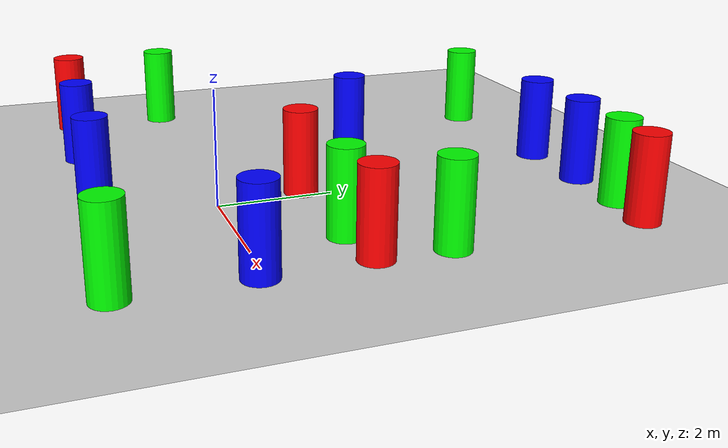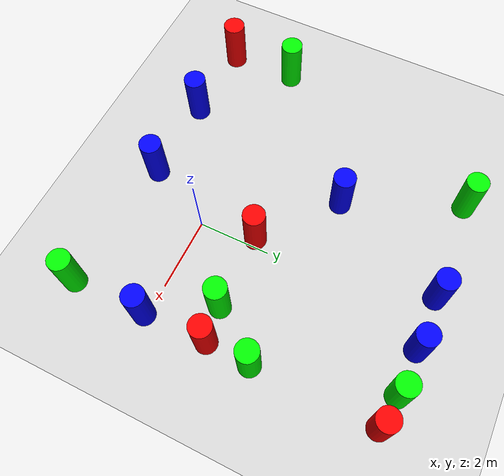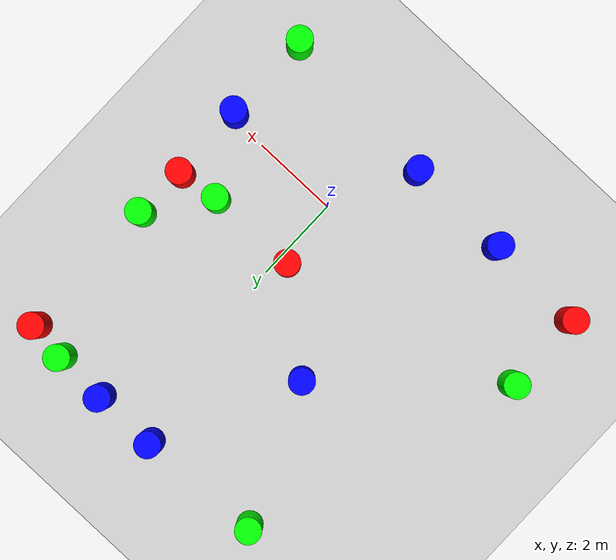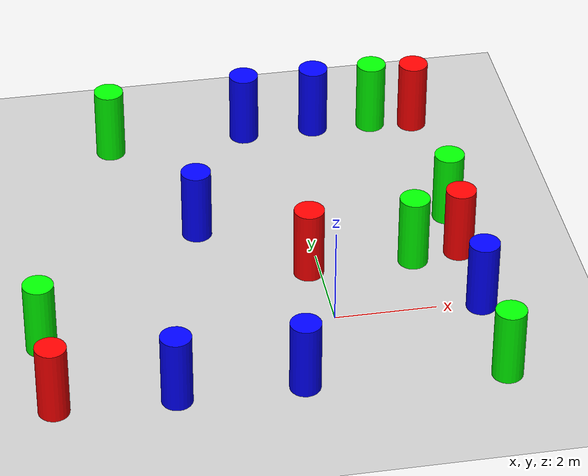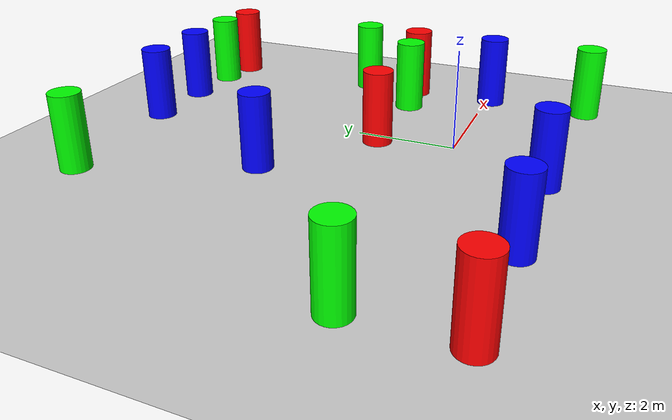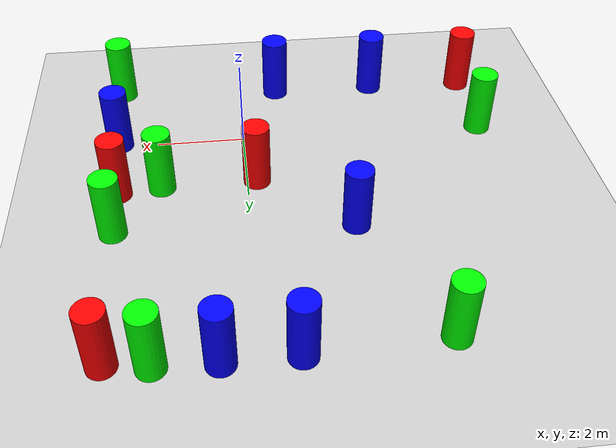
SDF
<sdf version="1.6">
 <world name="default">
  <model name="ground_plane">
   <static>1</static>
   <link name="link">
    <collision name="collision">
     <geometry><plane><normal>0 0 1</normal><size>100 100</size></plane></geometry>
     <surface>
      <contact><collide_bitmask>65535</collide_bitmask></contact>
      <friction><ode><mu>100</mu><mu2>50</mu2></ode></friction>
     </surface>
    </collision>
    <visual name="visual">
     <cast_shadows>0</cast_shadows>
     <geometry><plane><normal>0 0 1</normal><size>100 100</size></plane></geometry>
     <material>
      <script><uri>file://media/materials/scripts/gazebo.material</uri><name>Gazebo/Grey</name></script>
     </material>
    </visual>
   </link>
  </model>
  <model name="class01_clone_0">
   <link name="link">
    <pose>-0.202221 0.506091 0 0 -0 0</pose>
    <inertial>
     <mass>1</mass>
     <inertia><ixx>0.145833</ixx><ixy>0</ixy><ixz>0</ixz><iyy>0.145833</iyy><iyz>0</iyz><izz>0.125</izz></inertia>
    </inertial>
    <visual name="visual">
     <geometry><cylinder><radius>0.3</radius><length>2</length></cylinder></geometry>
     <material>
      <script><name>Gazebo/Grey</name><uri>file://media/materials/scripts/gazebo.material</uri></script>
      <ambient>1 0 0 1</ambient>
      <diffuse>0.7 0.7 0.7 1</diffuse>
      <specular>0.01 0.01 0.01 1</specular>
      <emissive>0 0 0 1</emissive>
      <shader type="vertex"><normal_map>__default__</normal_map></shader>
     </material>
    </visual>
    <collision name="collision">
     <geometry><cylinder><radius>0.5</radius><length>1</length></cylinder></geometry>
     <surface>
      <friction>
       <ode><mu>1</mu><mu2>1</mu2><fdir1>0 0 0</fdir1><slip1>0</slip1><slip2>0</slip2></ode>
       <torsional>
        <coefficient>1</coefficient>
        <patch_radius>0</patch_radius>
        <surface_radius>0</surface_radius>
        <use_patch_radius>1</use_patch_radius>
        <ode><slip>0</slip></ode>
       </torsional>
      </friction>
      <bounce><restitution_coefficient>0</restitution_coefficient><threshold>1e+06</threshold></bounce>
      <contact>
       <collide_without_contact>0</collide_without_contact>
       <collide_without_contact_bitmask>1</collide_without_contact_bitmask>
       <collide_bitmask>1</collide_bitmask>
       <ode>
        <soft_cfm>0</soft_cfm>
        <soft_erp>0.2</soft_erp>
        <kp>1e+13</kp>
        <kd>1</kd>
        <max_vel>0.01</max_vel>
        <min_depth>0</min_depth>
       </ode>
       <bullet>
        <split_impulse>1</split_impulse>
        <split_impulse_penetration_threshold>-0.01</split_impulse_penetration_threshold>
        <soft_cfm>0</soft_cfm>
        <soft_erp>0.2</soft_erp>
        <kp>1e+13</kp>
        <kd>1</kd>
       </bullet>
      </contact>
     </surface>
    </collision>
   </link>
   <static>0</static>
   <pose>-5.40307 -2.30982 0.499994 -3e-06 -1e-06 -0</pose>
  </model>
  <model name="class01_clone_4">
   <link name="link">
    <pose>-0.202221 0.506091 0 0 -0 0</pose>
    <inertial>
     <mass>1</mass>
     <inertia><ixx>0.145833</ixx><ixy>0</ixy><ixz>0</ixz><iyy>0.145833</iyy><iyz>0</iyz><izz>0.125</izz></inertia>
    </inertial>
    <visual name="visual">
     <geometry><cylinder><radius>0.3</radius><length>2</length></cylinder></geometry>
     <material>
      <script><name>Gazebo/Grey</name><uri>file://media/materials/scripts/gazebo.material</uri></script>
      <ambient>1 0 0 1</ambient>
      <diffuse>0.7 0.7 0.7 1</diffuse>
      <specular>0.01 0.01 0.01 1</specular>
      <emissive>0 0 0 1</emissive>
      <shader type="vertex"><normal_map>__default__</normal_map></shader>
     </material>
    </visual>
    <collision name="collision">
     <geometry><cylinder><radius>0.5</radius><length>1</length></cylinder></geometry>
     <surface>
      <friction>
       <ode><mu>1</mu><mu2>1</mu2><fdir1>0 0 0</fdir1><slip1>0</slip1><slip2>0</slip2></ode>
       <torsional>
        <coefficient>1</coefficient>
        <patch_radius>0</patch_radius>
        <surface_radius>0</surface_radius>
        <use_patch_radius>1</use_patch_radius>
        <ode><slip>0</slip></ode>
       </torsional>
      </friction>
      <bounce><restitution_coefficient>0</restitution_coefficient><threshold>1e+06</threshold></bounce>
      <contact>
       <collide_without_contact>0</collide_without_contact>
       <collide_without_contact_bitmask>1</collide_without_contact_bitmask>
       <collide_bitmask>1</collide_bitmask>
       <ode>
        <soft_cfm>0</soft_cfm>
        <soft_erp>0.2</soft_erp>
        <kp>1e+13</kp>
        <kd>1</kd>
        <max_vel>0.01</max_vel>
        <min_depth>0</min_depth>
       </ode>
       <bullet>
        <split_impulse>1</split_impulse>
        <split_impulse_penetration_threshold>-0.01</split_impulse_penetration_threshold>
        <soft_cfm>0</soft_cfm>
        <soft_erp>0.2</soft_erp>
        <kp>1e+13</kp>
        <kd>1</kd>
       </bullet>
      </contact>
     </surface>
    </collision>
   </link>
   <static>0</static>
   <pose>3.07826 5.78008 0.499995 -3e-06 -4e-06 -0</pose>
  </model>
  <model name="class01_clone_7">
   <link name="link">
    <pose>-0.202221 0.506091 0 0 -0 0</pose>
    <inertial>
     <mass>1</mass>
     <inertia><ixx>0.145833</ixx><ixy>0</ixy><ixz>0</ixz><iyy>0.145833</iyy><iyz>0</iyz><izz>0.125</izz></inertia>
    </inertial>
    <visual name="visual">
     <geometry><cylinder><radius>0.3</radius><length>2</length></cylinder></geometry>
     <material>
      <script><name>Gazebo/Grey</name><uri>file://media/materials/scripts/gazebo.material</uri></script>
      <ambient>1 0 0 1</ambient>
      <diffuse>0.7 0.7 0.7 1</diffuse>
      <specular>0.01 0.01 0.01 1</specular>
      <emissive>0 0 0 1</emissive>
      <shader type="vertex"><normal_map>__default__</normal_map></shader>
     </material>
    </visual>
    <collision name="collision">
     <geometry><cylinder><radius>0.5</radius><length>1</length></cylinder></geometry>
     <surface>
      <friction>
       <ode><mu>1</mu><mu2>1</mu2><fdir1>0 0 0</fdir1><slip1>0</slip1><slip2>0</slip2></ode>
       <torsional>
        <coefficient>1</coefficient>
        <patch_radius>0</patch_radius>
        <surface_radius>0</surface_radius>
        <use_patch_radius>1</use_patch_radius>
        <ode><slip>0</slip></ode>
       </torsional>
      </friction>
      <bounce><restitution_coefficient>0</restitution_coefficient><threshold>1e+06</threshold></bounce>
      <contact>
       <collide_without_contact>0</collide_without_contact>
       <collide_without_contact_bitmask>1</collide_without_contact_bitmask>
       <collide_bitmask>1</collide_bitmask>
       <ode>
        <soft_cfm>0</soft_cfm>
        <soft_erp>0.2</soft_erp>
        <kp>1e+13</kp>
        <kd>1</kd>
        <max_vel>0.01</max_vel>
        <min_depth>0</min_depth>
       </ode>
       <bullet>
        <split_impulse>1</split_impulse>
        <split_impulse_penetration_threshold>-0.01</split_impulse_penetration_threshold>
        <soft_cfm>0</soft_cfm>
        <soft_erp>0.2</soft_erp>
        <kp>1e+13</kp>
        <kd>1</kd>
       </bullet>
      </contact>
     </surface>
    </collision>
   </link>
   <static>0</static>
   <pose>-0.021381 1.02694 0.499996 3e-06 1e-06 -0</pose>
  </model>
  <model name="class01_clone_8">
   <link name="link">
    <pose>-0.202221 0.506091 0 0 -0 0</pose>
    <inertial>
     <mass>1</mass>
     <inertia><ixx>0.145833</ixx><ixy>0</ixy><ixz>0</ixz><iyy>0.145833</iyy><iyz>0</iyz><izz>0.125</izz></inertia>
    </inertial>
    <visual name="visual">
     <geometry><cylinder><radius>0.3</radius><length>2</length></cylinder></geometry>
     <material>
      <script><name>Gazebo/Grey</name><uri>file://media/materials/scripts/gazebo.material</uri></script>
      <ambient>1 0 0 1</ambient>
      <diffuse>0.7 0.7 0.7 1</diffuse>
      <specular>0.01 0.01 0.01 1</specular>
      <emissive>0 0 0 1</emissive>
      <shader type="vertex"><normal_map>__default__</normal_map></shader>
     </material>
    </visual>
    <collision name="collision">
     <geometry><cylinder><radius>0.5</radius><length>1</length></cylinder></geometry>
     <surface>
      <friction>
       <ode><mu>1</mu><mu2>1</mu2><fdir1>0 0 0</fdir1><slip1>0</slip1><slip2>0</slip2></ode>
       <torsional>
        <coefficient>1</coefficient>
        <patch_radius>0</patch_radius>
        <surface_radius>0</surface_radius>
        <use_patch_radius>1</use_patch_radius>
        <ode><slip>0</slip></ode>
       </torsional>
      </friction>
      <bounce><restitution_coefficient>0</restitution_coefficient><threshold>1e+06</threshold></bounce>
      <contact>
       <collide_without_contact>0</collide_without_contact>
       <collide_without_contact_bitmask>1</collide_without_contact_bitmask>
       <collide_bitmask>1</collide_bitmask>
       <ode>
        <soft_cfm>0</soft_cfm>
        <soft_erp>0.2</soft_erp>
        <kp>1e+13</kp>
        <kd>1</kd>
        <max_vel>0.01</max_vel>
        <min_depth>0</min_depth>
       </ode>
       <bullet>
        <split_impulse>1</split_impulse>
        <split_impulse_penetration_threshold>-0.01</split_impulse_penetration_threshold>
        <soft_cfm>0</soft_cfm>
        <soft_erp>0.2</soft_erp>
        <kp>1e+13</kp>
        <kd>1</kd>
       </bullet>
      </contact>
     </surface>
    </collision>
   </link>
   <static>0</static>
   <pose>3.0328 1.17628 0.499996 3e-06 1e-06 -0</pose>
  </model>
  <model name="class02_clone_0">
   <link name="link">
    <inertial>
     <mass>1</mass>
     <inertia><ixx>0.145833</ixx><ixy>0</ixy><ixz>0</ixz><iyy>0.145833</iyy><iyz>0</iyz><izz>0.125</izz></inertia>
    </inertial>
    <visual name="visual">
     <geometry><cylinder><radius>0.3</radius><length>2</length></cylinder></geometry>
     <material>
      <script><name>Gazebo/Grey</name><uri>file://media/materials/scripts/gazebo.material</uri></script>
      <ambient>0 1 0 1</ambient>
      <diffuse>0.7 0.7 0.7 1</diffuse>
      <specular>0.01 0.01 0.01 1</specular>
      <emissive>0 0 0 1</emissive>
      <shader type="vertex"><normal_map>__default__</normal_map></shader>
     </material>
    </visual>
    <collision name="collision">
     <geometry><cylinder><radius>0.5</radius><length>1</length></cylinder></geometry>
     <surface>
      <friction>
       <ode><mu>1</mu><mu2>1</mu2><fdir1>0 0 0</fdir1><slip1>0</slip1><slip2>0</slip2></ode>
       <torsional>
        <coefficient>1</coefficient>
        <patch_radius>0</patch_radius>
        <surface_radius>0</surface_radius>
        <use_patch_radius>1</use_patch_radius>
        <ode><slip>0</slip></ode>
       </torsional>
      </friction>
      <bounce><restitution_coefficient>0</restitution_coefficient><threshold>1e+06</threshold></bounce>
      <contact>
       <collide_without_contact>0</collide_without_contact>
       <collide_without_contact_bitmask>1</collide_without_contact_bitmask>
       <collide_bitmask>1</collide_bitmask>
       <ode>
        <soft_cfm>0</soft_cfm>
        <soft_erp>0.2</soft_erp>
        <kp>1e+13</kp>
        <kd>1</kd>
        <max_vel>0.01</max_vel>
        <min_depth>0</min_depth>
       </ode>
       <bullet>
        <split_impulse>1</split_impulse>
        <split_impulse_penetration_threshold>-0.01</split_impulse_penetration_threshold>
        <soft_cfm>0</soft_cfm>
        <soft_erp>0.2</soft_erp>
        <kp>1e+13</kp>
        <kd>1</kd>
       </bullet>
      </contact>
     </surface>
    </collision>
   </link>
   <static>0</static>
   <pose>-5.64027 0.07795 0.499998 3e-06 2e-06 0</pose>
  </model>
  <model name="class02_clone_2">
   <link name="link">
    <inertial>
     <mass>1</mass>
     <inertia><ixx>0.145833</ixx><ixy>0</ixy><ixz>0</ixz><iyy>0.145833</iyy><iyz>0</iyz><izz>0.125</izz></inertia>
    </inertial>
    <visual name="visual">
     <geometry><cylinder><radius>0.3</radius><length>2</length></cylinder></geometry>
     <material>
      <script><name>Gazebo/Grey</name><uri>file://media/materials/scripts/gazebo.material</uri></script>
      <ambient>0 1 0 1</ambient>
      <diffuse>0.7 0.7 0.7 1</diffuse>
      <specular>0.01 0.01 0.01 1</specular>
      <emissive>0 0 0 1</emissive>
      <shader type="vertex"><normal_map>__default__</normal_map></shader>
     </material>
    </visual>
    <collision name="collision">
     <geometry><cylinder><radius>0.5</radius><length>1</length></cylinder></geometry>
     <surface>
      <friction>
       <ode><mu>1</mu><mu2>1</mu2><fdir1>0 0 0</fdir1><slip1>0</slip1><slip2>0</slip2></ode>
       <torsional>
        <coefficient>1</coefficient>
        <patch_radius>0</patch_radius>
        <surface_radius>0</surface_radius>
        <use_patch_radius>1</use_patch_radius>
        <ode><slip>0</slip></ode>
       </torsional>
      </friction>
      <bounce><restitution_coefficient>0</restitution_coefficient><threshold>1e+06</threshold></bounce>
      <contact>
       <collide_without_contact>0</collide_without_contact>
       <collide_without_contact_bitmask>1</collide_without_contact_bitmask>
       <collide_bitmask>1</collide_bitmask>
       <ode>
        <soft_cfm>0</soft_cfm>
        <soft_erp>0.2</soft_erp>
        <kp>1e+13</kp>
        <kd>1</kd>
        <max_vel>0.01</max_vel>
        <min_depth>0</min_depth>
       </ode>
       <bullet>
        <split_impulse>1</split_impulse>
        <split_impulse_penetration_threshold>-0.01</split_impulse_penetration_threshold>
        <soft_cfm>0</soft_cfm>
        <soft_erp>0.2</soft_erp>
        <kp>1e+13</kp>
        <kd>1</kd>
       </bullet>
      </contact>
     </surface>
    </collision>
   </link>
   <static>0</static>
   <pose>1.87775 1.56113 0.499992 -3e-06 -2e-06 0</pose>
  </model>
  <model name="class02_clone_3">
   <link name="link">
    <inertial>
     <mass>1</mass>
     <inertia><ixx>0.145833</ixx><ixy>0</ixy><ixz>0</ixz><iyy>0.145833</iyy><iyz>0</iyz><izz>0.125</izz></inertia>
    </inertial>
    <visual name="visual">
     <geometry><cylinder><radius>0.3</radius><length>2</length></cylinder></geometry>
     <material>
      <script><name>Gazebo/Grey</name><uri>file://media/materials/scripts/gazebo.material</uri></script>
      <ambient>0 1 0 1</ambient>
      <diffuse>0.7 0.7 0.7 1</diffuse>
      <specular>0.01 0.01 0.01 1</specular>
      <emissive>0 0 0 1</emissive>
      <shader type="vertex"><normal_map>__default__</normal_map></shader>
     </material>
    </visual>
    <collision name="collision">
     <geometry><cylinder><radius>0.5</radius><length>1</length></cylinder></geometry>
     <surface>
      <friction>
       <ode><mu>1</mu><mu2>1</mu2><fdir1>0 0 0</fdir1><slip1>0</slip1><slip2>0</slip2></ode>
       <torsional>
        <coefficient>1</coefficient>
        <patch_radius>0</patch_radius>
        <surface_radius>0</surface_radius>
        <use_patch_radius>1</use_patch_radius>
        <ode><slip>0</slip></ode>
       </torsional>
      </friction>
      <bounce><restitution_coefficient>0</restitution_coefficient><threshold>1e+06</threshold></bounce>
      <contact>
       <collide_without_contact>0</collide_without_contact>
       <collide_without_contact_bitmask>1</collide_without_contact_bitmask>
       <collide_bitmask>1</collide_bitmask>
       <ode>
        <soft_cfm>0</soft_cfm>
        <soft_erp>0.2</soft_erp>
        <kp>1e+13</kp>
        <kd>1</kd>
        <max_vel>0.01</max_vel>
        <min_depth>0</min_depth>
       </ode>
       <bullet>
        <split_impulse>1</split_impulse>
        <split_impulse_penetration_threshold>-0.01</split_impulse_penetration_threshold>
        <soft_cfm>0</soft_cfm>
        <soft_erp>0.2</soft_erp>
        <kp>1e+13</kp>
        <kd>1</kd>
       </bullet>
      </contact>
     </surface>
    </collision>
   </link>
   <static>0</static>
   <pose>2.87603 2.90882 0.499992 -3e-06 -3e-06 0</pose>
  </model>
  <model name="class02_clone_4">
   <link name="link">
    <inertial>
     <mass>1</mass>
     <inertia><ixx>0.145833</ixx><ixy>0</ixy><ixz>0</ixz><iyy>0.145833</iyy><iyz>0</iyz><izz>0.125</izz></inertia>
    </inertial>
    <visual name="visual">
     <geometry><cylinder><radius>0.3</radius><length>2</length></cylinder></geometry>
     <material>
      <script><name>Gazebo/Grey</name><uri>file://media/materials/scripts/gazebo.material</uri></script>
      <ambient>0 1 0 1</ambient>
      <diffuse>0.7 0.7 0.7 1</diffuse>
      <specular>0.01 0.01 0.01 1</specular>
      <emissive>0 0 0 1</emissive>
      <shader type="vertex"><normal_map>__default__</normal_map></shader>
     </material>
    </visual>
    <collision name="collision">
     <geometry><cylinder><radius>0.5</radius><length>1</length></cylinder></geometry>
     <surface>
      <friction>
       <ode><mu>1</mu><mu2>1</mu2><fdir1>0 0 0</fdir1><slip1>0</slip1><slip2>0</slip2></ode>
       <torsional>
        <coefficient>1</coefficient>
        <patch_radius>0</patch_radius>
        <surface_radius>0</surface_radius>
        <use_patch_radius>1</use_patch_radius>
        <ode><slip>0</slip></ode>
       </torsional>
      </friction>
      <bounce><restitution_coefficient>0</restitution_coefficient><threshold>1e+06</threshold></bounce>
      <contact>
       <collide_without_contact>0</collide_without_contact>
       <collide_without_contact_bitmask>1</collide_without_contact_bitmask>
       <collide_bitmask>1</collide_bitmask>
       <ode>
        <soft_cfm>0</soft_cfm>
        <soft_erp>0.2</soft_erp>
        <kp>1e+13</kp>
        <kd>1</kd>
        <max_vel>0.01</max_vel>
        <min_depth>0</min_depth>
       </ode>
       <bullet>
        <split_impulse>1</split_impulse>
        <split_impulse_penetration_threshold>-0.01</split_impulse_penetration_threshold>
        <soft_cfm>0</soft_cfm>
        <soft_erp>0.2</soft_erp>
        <kp>1e+13</kp>
        <kd>1</kd>
       </bullet>
      </contact>
     </surface>
    </collision>
   </link>
   <static>0</static>
   <pose>2.0028 6.41259 0.499992 -3e-06 -2e-06 0</pose>
  </model>
  <model name="class02_clone_5">
   <link name="link">
    <inertial>
     <mass>1</mass>
     <inertia><ixx>0.145833</ixx><ixy>0</ixy><ixz>0</ixz><iyy>0.145833</iyy><iyz>0</iyz><izz>0.125</izz></inertia>
    </inertial>
    <visual name="visual">
     <geometry><cylinder><radius>0.3</radius><length>2</length></cylinder></geometry>
     <material>
      <script><name>Gazebo/Grey</name><uri>file://media/materials/scripts/gazebo.material</uri></script>
      <ambient>0 1 0 1</ambient>
      <diffuse>0.7 0.7 0.7 1</diffuse>
      <specular>0.01 0.01 0.01 1</specular>
      <emissive>0 0 0 1</emissive>
      <shader type="vertex"><normal_map>__default__</normal_map></shader>
     </material>
    </visual>
    <collision name="collision">
     <geometry><cylinder><radius>0.5</radius><length>1</length></cylinder></geometry>
     <surface>
      <friction>
       <ode><mu>1</mu><mu2>1</mu2><fdir1>0 0 0</fdir1><slip1>0</slip1><slip2>0</slip2></ode>
       <torsional>
        <coefficient>1</coefficient>
        <patch_radius>0</patch_radius>
        <surface_radius>0</surface_radius>
        <use_patch_radius>1</use_patch_radius>
        <ode><slip>0</slip></ode>
       </torsional>
      </friction>
      <bounce><restitution_coefficient>0</restitution_coefficient><threshold>1e+06</threshold></bounce>
      <contact>
       <collide_without_contact>0</collide_without_contact>
       <collide_without_contact_bitmask>1</collide_without_contact_bitmask>
       <collide_bitmask>1</collide_bitmask>
       <ode>
        <soft_cfm>0</soft_cfm>
        <soft_erp>0.2</soft_erp>
        <kp>1e+13</kp>
        <kd>1</kd>
        <max_vel>0.01</max_vel>
        <min_depth>0</min_depth>
       </ode>
       <bullet>
        <split_impulse>1</split_impulse>
        <split_impulse_penetration_threshold>-0.01</split_impulse_penetration_threshold>
        <soft_cfm>0</soft_cfm>
        <soft_erp>0.2</soft_erp>
        <kp>1e+13</kp>
        <kd>1</kd>
       </bullet>
      </contact>
     </surface>
    </collision>
   </link>
   <static>0</static>
   <pose>-3.55072 6.31041 0.499992 -3e-06 -2e-06 0</pose>
  </model>
  <model name="class02_clone_9">
   <link name="link">
    <inertial>
     <mass>1</mass>
     <inertia><ixx>0.145833</ixx><ixy>0</ixy><ixz>0</ixz><iyy>0.145833</iyy><iyz>0</iyz><izz>0.125</izz></inertia>
    </inertial>
    <visual name="visual">
     <geometry><cylinder><radius>0.3</radius><length>2</length></cylinder></geometry>
     <material>
      <script><name>Gazebo/Grey</name><uri>file://media/materials/scripts/gazebo.material</uri></script>
      <ambient>0 1 0 1</ambient>
      <diffuse>0.7 0.7 0.7 1</diffuse>
      <specular>0.01 0.01 0.01 1</specular>
      <emissive>0 0 0 1</emissive>
      <shader type="vertex"><normal_map>__default__</normal_map></shader>
     </material>
    </visual>
    <collision name="collision">
     <geometry><cylinder><radius>0.5</radius><length>1</length></cylinder></geometry>
     <surface>
      <friction>
       <ode><mu>1</mu><mu2>1</mu2><fdir1>0 0 0</fdir1><slip1>0</slip1><slip2>0</slip2></ode>
       <torsional>
        <coefficient>1</coefficient>
        <patch_radius>0</patch_radius>
        <surface_radius>0</surface_radius>
        <use_patch_radius>1</use_patch_radius>
        <ode><slip>0</slip></ode>
       </torsional>
      </friction>
      <bounce><restitution_coefficient>0</restitution_coefficient><threshold>1e+06</threshold></bounce>
      <contact>
       <collide_without_contact>0</collide_without_contact>
       <collide_without_contact_bitmask>1</collide_without_contact_bitmask>
       <collide_bitmask>1</collide_bitmask>
       <ode>
        <soft_cfm>0</soft_cfm>
        <soft_erp>0.2</soft_erp>
        <kp>1e+13</kp>
        <kd>1</kd>
        <max_vel>0.01</max_vel>
        <min_depth>0</min_depth>
       </ode>
       <bullet>
        <split_impulse>1</split_impulse>
        <split_impulse_penetration_threshold>-0.01</split_impulse_penetration_threshold>
        <soft_cfm>0</soft_cfm>
        <soft_erp>0.2</soft_erp>
        <kp>1e+13</kp>
        <kd>1</kd>
       </bullet>
      </contact>
     </surface>
    </collision>
   </link>
   <static>0</static>
   <pose>2.87476 -2.17177 0.501321 -0.000737 -0.00254 -0.001632</pose>
  </model>
  <model name="class03">
   <link name="link">
    <inertial>
     <mass>1</mass>
     <inertia><ixx>0.145833</ixx><ixy>0</ixy><ixz>0</ixz><iyy>0.145833</iyy><iyz>0</iyz><izz>0.125</izz></inertia>
    </inertial>
    <visual name="visual">
     <geometry><cylinder><radius>0.3</radius><length>2</length></cylinder></geometry>
     <material>
      <script><name>Gazebo/Grey</name><uri>file://media/materials/scripts/gazebo.material</uri></script>
      <ambient>0 0 1 1</ambient>
      <diffuse>0.7 0.7 0.7 1</diffuse>
      <specular>0.01 0.01 0.01 1</specular>
      <emissive>0 0 0 1</emissive>
      <shader type="vertex"><normal_map>__default__</normal_map></shader>
     </material>
    </visual>
    <collision name="collision">
     <geometry><cylinder><radius>0.5</radius><length>1</length></cylinder></geometry>
     <surface>
      <friction>
       <ode><mu>1</mu><mu2>1</mu2><fdir1>0 0 0</fdir1><slip1>0</slip1><slip2>0</slip2></ode>
       <torsional>
        <coefficient>1</coefficient>
        <patch_radius>0</patch_radius>
        <surface_radius>0</surface_radius>
        <use_patch_radius>1</use_patch_radius>
        <ode><slip>0</slip></ode>
       </torsional>
      </friction>
      <bounce><restitution_coefficient>0</restitution_coefficient><threshold>1e+06</threshold></bounce>
      <contact>
       <collide_without_contact>0</collide_without_contact>
       <collide_without_contact_bitmask>1</collide_without_contact_bitmask>
       <collide_bitmask>1</collide_bitmask>
       <ode>
        <soft_cfm>0</soft_cfm>
        <soft_erp>0.2</soft_erp>
        <kp>1e+13</kp>
        <kd>1</kd>
        <max_vel>0.01</max_vel>
        <min_depth>0</min_depth>
       </ode>
       <bullet>
        <split_impulse>1</split_impulse>
        <split_impulse_penetration_threshold>-0.01</split_impulse_penetration_threshold>
        <soft_cfm>0</soft_cfm>
        <soft_erp>0.2</soft_erp>
        <kp>1e+13</kp>
        <kd>1</kd>
       </bullet>
      </contact>
     </surface>
    </collision>
   </link>
   <static>0</static>
   <pose>-0.92442 -1.90177 0.5 0 -0 0</pose>
  </model>
  <model name="class03_clone">
   <link name="link">
    <inertial>
     <mass>1</mass>
     <inertia><ixx>0.145833</ixx><ixy>0</ixy><ixz>0</ixz><iyy>0.145833</iyy><iyz>0</iyz><izz>0.125</izz></inertia>
    </inertial>
    <visual name="visual">
     <geometry><cylinder><radius>0.3</radius><length>2</length></cylinder></geometry>
     <material>
      <script><name>Gazebo/Grey</name><uri>file://media/materials/scripts/gazebo.material</uri></script>
      <ambient>0 0 1 1</ambient>
      <diffuse>0.7 0.7 0.7 1</diffuse>
      <specular>0.01 0.01 0.01 1</specular>
      <emissive>0 0 0 1</emissive>
      <shader type="vertex"><normal_map>__default__</normal_map></shader>
     </material>
    </visual>
    <collision name="collision">
     <geometry><cylinder><radius>0.5</radius><length>1</length></cylinder></geometry>
     <surface>
      <friction>
       <ode><mu>1</mu><mu2>1</mu2><fdir1>0 0 0</fdir1><slip1>0</slip1><slip2>0</slip2></ode>
       <torsional>
        <coefficient>1</coefficient>
        <patch_radius>0</patch_radius>
        <surface_radius>0</surface_radius>
        <use_patch_radius>1</use_patch_radius>
        <ode><slip>0</slip></ode>
       </torsional>
      </friction>
      <bounce><restitution_coefficient>0</restitution_coefficient><threshold>1e+06</threshold></bounce>
      <contact>
       <collide_without_contact>0</collide_without_contact>
       <collide_without_contact_bitmask>1</collide_without_contact_bitmask>
       <collide_bitmask>1</collide_bitmask>
       <ode>
        <soft_cfm>0</soft_cfm>
        <soft_erp>0.2</soft_erp>
        <kp>1e+13</kp>
        <kd>1</kd>
        <max_vel>0.01</max_vel>
        <min_depth>0</min_depth>
       </ode>
       <bullet>
        <split_impulse>1</split_impulse>
        <split_impulse_penetration_threshold>-0.01</split_impulse_penetration_threshold>
        <soft_cfm>0</soft_cfm>
        <soft_erp>0.2</soft_erp>
        <kp>1e+13</kp>
        <kd>1</kd>
       </bullet>
      </contact>
     </surface>
    </collision>
   </link>
   <static>0</static>
   <pose>-3.32683 -1.88274 0.499999 0 -0 0</pose>
  </model>
  <model name="class03_clone_4">
   <link name="link">
    <inertial>
     <mass>1</mass>
     <inertia><ixx>0.145833</ixx><ixy>0</ixy><ixz>0</ixz><iyy>0.145833</iyy><iyz>0</iyz><izz>0.125</izz></inertia>
    </inertial>
    <visual name="visual">
     <geometry><cylinder><radius>0.3</radius><length>2</length></cylinder></geometry>
     <material>
      <script><name>Gazebo/Grey</name><uri>file://media/materials/scripts/gazebo.material</uri></script>
      <ambient>0 0 1 1</ambient>
      <diffuse>0.7 0.7 0.7 1</diffuse>
      <specular>0.01 0.01 0.01 1</specular>
      <emissive>0 0 0 1</emissive>
      <shader type="vertex"><normal_map>__default__</normal_map></shader>
     </material>
    </visual>
    <collision name="collision">
     <geometry><cylinder><radius>0.5</radius><length>1</length></cylinder></geometry>
     <surface>
      <friction>
       <ode><mu>1</mu><mu2>1</mu2><fdir1>0 0 0</fdir1><slip1>0</slip1><slip2>0</slip2></ode>
       <torsional>
        <coefficient>1</coefficient>
        <patch_radius>0</patch_radius>
        <surface_radius>0</surface_radius>
        <use_patch_radius>1</use_patch_radius>
        <ode><slip>0</slip></ode>
       </torsional>
      </friction>
      <bounce><restitution_coefficient>0</restitution_coefficient><threshold>1e+06</threshold></bounce>
      <contact>
       <collide_without_contact>0</collide_without_contact>
       <collide_without_contact_bitmask>1</collide_without_contact_bitmask>
       <collide_bitmask>1</collide_bitmask>
       <ode>
        <soft_cfm>0</soft_cfm>
        <soft_erp>0.2</soft_erp>
        <kp>1e+13</kp>
        <kd>1</kd>
        <max_vel>0.01</max_vel>
        <min_depth>0</min_depth>
       </ode>
       <bullet>
        <split_impulse>1</split_impulse>
        <split_impulse_penetration_threshold>-0.01</split_impulse_penetration_threshold>
        <soft_cfm>0</soft_cfm>
        <soft_erp>0.2</soft_erp>
        <kp>1e+13</kp>
        <kd>1</kd>
       </bullet>
      </contact>
     </surface>
    </collision>
   </link>
   <static>0</static>
   <pose>-0.705786 6.4444 0.499999 0 -0 0</pose>
  </model>
  <model name="class03_clone_5">
   <link name="link">
    <inertial>
     <mass>1</mass>
     <inertia><ixx>0.145833</ixx><ixy>0</ixy><ixz>0</ixz><iyy>0.145833</iyy><iyz>0</iyz><izz>0.125</izz></inertia>
    </inertial>
    <visual name="visual">
     <geometry><cylinder><radius>0.3</radius><length>2</length></cylinder></geometry>
     <material>
      <script><name>Gazebo/Grey</name><uri>file://media/materials/scripts/gazebo.material</uri></script>
      <ambient>0 0 1 1</ambient>
      <diffuse>0.7 0.7 0.7 1</diffuse>
      <specular>0.01 0.01 0.01 1</specular>
      <emissive>0 0 0 1</emissive>
      <shader type="vertex"><normal_map>__default__</normal_map></shader>
     </material>
    </visual>
    <collision name="collision">
     <geometry><cylinder><radius>0.5</radius><length>1</length></cylinder></geometry>
     <surface>
      <friction>
       <ode><mu>1</mu><mu2>1</mu2><fdir1>0 0 0</fdir1><slip1>0</slip1><slip2>0</slip2></ode>
       <torsional>
        <coefficient>1</coefficient>
        <patch_radius>0</patch_radius>
        <surface_radius>0</surface_radius>
        <use_patch_radius>1</use_patch_radius>
        <ode><slip>0</slip></ode>
       </torsional>
      </friction>
      <bounce><restitution_coefficient>0</restitution_coefficient><threshold>1e+06</threshold></bounce>
      <contact>
       <collide_without_contact>0</collide_without_contact>
       <collide_without_contact_bitmask>1</collide_without_contact_bitmask>
       <collide_bitmask>1</collide_bitmask>
       <ode>
        <soft_cfm>0</soft_cfm>
        <soft_erp>0.2</soft_erp>
        <kp>1e+13</kp>
        <kd>1</kd>
        <max_vel>0.01</max_vel>
        <min_depth>0</min_depth>
       </ode>
       <bullet>
        <split_impulse>1</split_impulse>
        <split_impulse_penetration_threshold>-0.01</split_impulse_penetration_threshold>
        <soft_cfm>0</soft_cfm>
        <soft_erp>0.2</soft_erp>
        <kp>1e+13</kp>
        <kd>1</kd>
       </bullet>
      </contact>
     </surface>
    </collision>
   </link>
   <static>0</static>
   <pose>0.770714 6.456 0.499999 0 -0 0</pose>
  </model>
  <model name="class03_clone_6">
   <link name="link">
    <inertial>
     <mass>1</mass>
     <inertia><ixx>0.145833</ixx><ixy>0</ixy><ixz>0</ixz><iyy>0.145833</iyy><iyz>0</iyz><izz>0.125</izz></inertia>
    </inertial>
    <visual name="visual">
     <geometry><cylinder><radius>0.3</radius><length>2</length></cylinder></geometry>
     <material>
      <script><name>Gazebo/Grey</name><uri>file://media/materials/scripts/gazebo.material</uri></script>
      <ambient>0 0 1 1</ambient>
      <diffuse>0.7 0.7 0.7 1</diffuse>
      <specular>0.01 0.01 0.01 1</specular>
      <emissive>0 0 0 1</emissive>
      <shader type="vertex"><normal_map>__default__</normal_map></shader>
     </material>
    </visual>
    <collision name="collision">
     <geometry><cylinder><radius>0.5</radius><length>1</length></cylinder></geometry>
     <surface>
      <friction>
       <ode><mu>1</mu><mu2>1</mu2><fdir1>0 0 0</fdir1><slip1>0</slip1><slip2>0</slip2></ode>
       <torsional>
        <coefficient>1</coefficient>
        <patch_radius>0</patch_radius>
        <surface_radius>0</surface_radius>
        <use_patch_radius>1</use_patch_radius>
        <ode><slip>0</slip></ode>
       </torsional>
      </friction>
      <bounce><restitution_coefficient>0</restitution_coefficient><threshold>1e+06</threshold></bounce>
      <contact>
       <collide_without_contact>0</collide_without_contact>
       <collide_without_contact_bitmask>1</collide_without_contact_bitmask>
       <collide_bitmask>1</collide_bitmask>
       <ode>
        <soft_cfm>0</soft_cfm>
        <soft_erp>0.2</soft_erp>
        <kp>1e+13</kp>
        <kd>1</kd>
        <max_vel>0.01</max_vel>
        <min_depth>0</min_depth>
       </ode>
       <bullet>
        <split_impulse>1</split_impulse>
        <split_impulse_penetration_threshold>-0.01</split_impulse_penetration_threshold>
        <soft_cfm>0</soft_cfm>
        <soft_erp>0.2</soft_erp>
        <kp>1e+13</kp>
        <kd>1</kd>
       </bullet>
      </contact>
     </surface>
    </collision>
   </link>
   <static>0</static>
   <pose>-2.19892 3.17789 0.499992 0 0 -0.001485</pose>
  </model>
  <model name="class03_clone_7">
   <link name="link">
    <inertial>
     <mass>1</mass>
     <inertia><ixx>0.145833</ixx><ixy>0</ixy><ixz>0</ixz><iyy>0.145833</iyy><iyz>0</iyz><izz>0.125</izz></inertia>
    </inertial>
    <visual name="visual">
     <geometry><cylinder><radius>0.3</radius><length>2</length></cylinder></geometry>
     <material>
      <script><name>Gazebo/Grey</name><uri>file://media/materials/scripts/gazebo.material</uri></script>
      <ambient>0 0 1 1</ambient>
      <diffuse>0.7 0.7 0.7 1</diffuse>
      <specular>0.01 0.01 0.01 1</specular>
      <emissive>0 0 0 1</emissive>
      <shader type="vertex"><normal_map>__default__</normal_map></shader>
     </material>
    </visual>
    <collision name="collision">
     <geometry><cylinder><radius>0.5</radius><length>1</length></cylinder></geometry>
     <surface>
      <friction>
       <ode><mu>1</mu><mu2>1</mu2><fdir1>0 0 0</fdir1><slip1>0</slip1><slip2>0</slip2></ode>
       <torsional>
        <coefficient>1</coefficient>
        <patch_radius>0</patch_radius>
        <surface_radius>0</surface_radius>
        <use_patch_radius>1</use_patch_radius>
        <ode><slip>0</slip></ode>
       </torsional>
      </friction>
      <bounce><restitution_coefficient>0</restitution_coefficient><threshold>1e+06</threshold></bounce>
      <contact>
       <collide_without_contact>0</collide_without_contact>
       <collide_without_contact_bitmask>1</collide_without_contact_bitmask>
       <collide_bitmask>1</collide_bitmask>
       <ode>
        <soft_cfm>0</soft_cfm>
        <soft_erp>0.2</soft_erp>
        <kp>1e+13</kp>
        <kd>1</kd>
        <max_vel>0.01</max_vel>
        <min_depth>0</min_depth>
       </ode>
       <bullet>
        <split_impulse>1</split_impulse>
        <split_impulse_penetration_threshold>-0.01</split_impulse_penetration_threshold>
        <soft_cfm>0</soft_cfm>
        <soft_erp>0.2</soft_erp>
        <kp>1e+13</kp>
        <kd>1</kd>
       </bullet>
      </contact>
     </surface>
    </collision>
   </link>
   <static>0</static>
   <pose>2.87489 -0.086116 0.499999 0 -0 0</pose>
  </model>
 </world>
</sdf>
